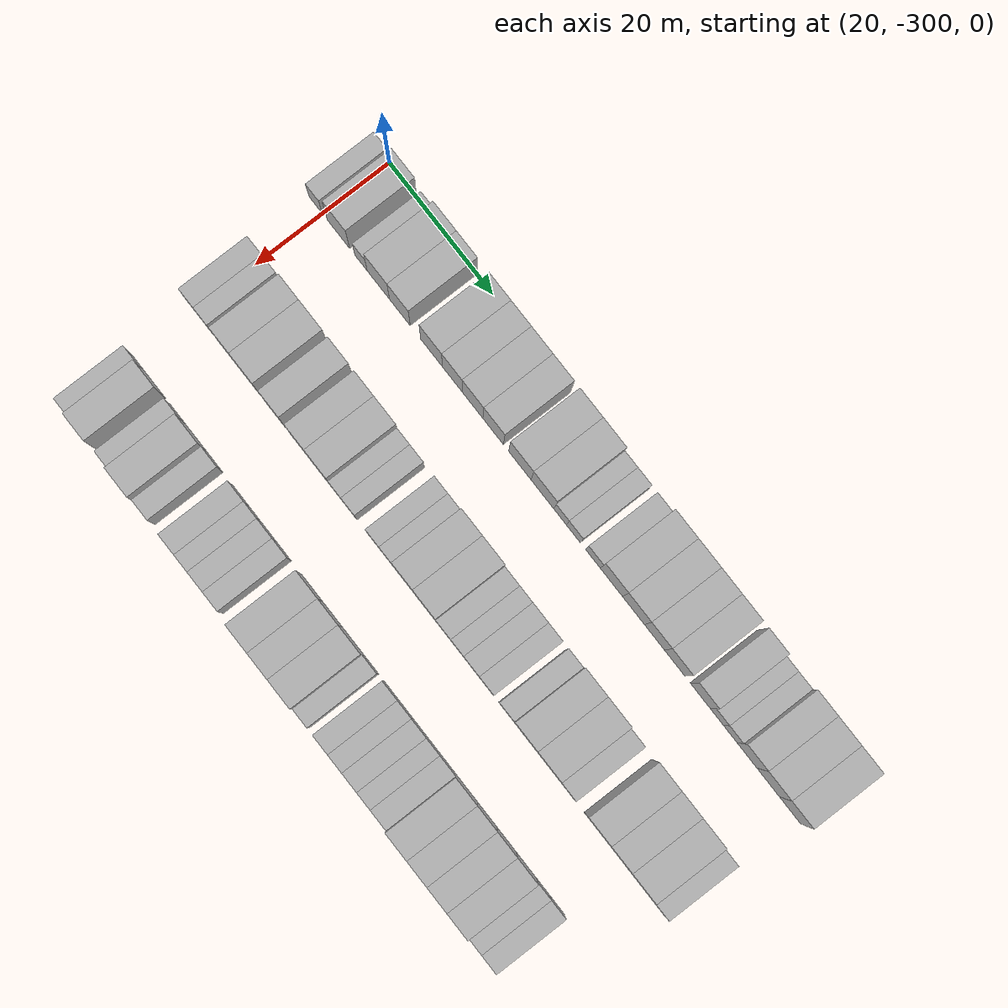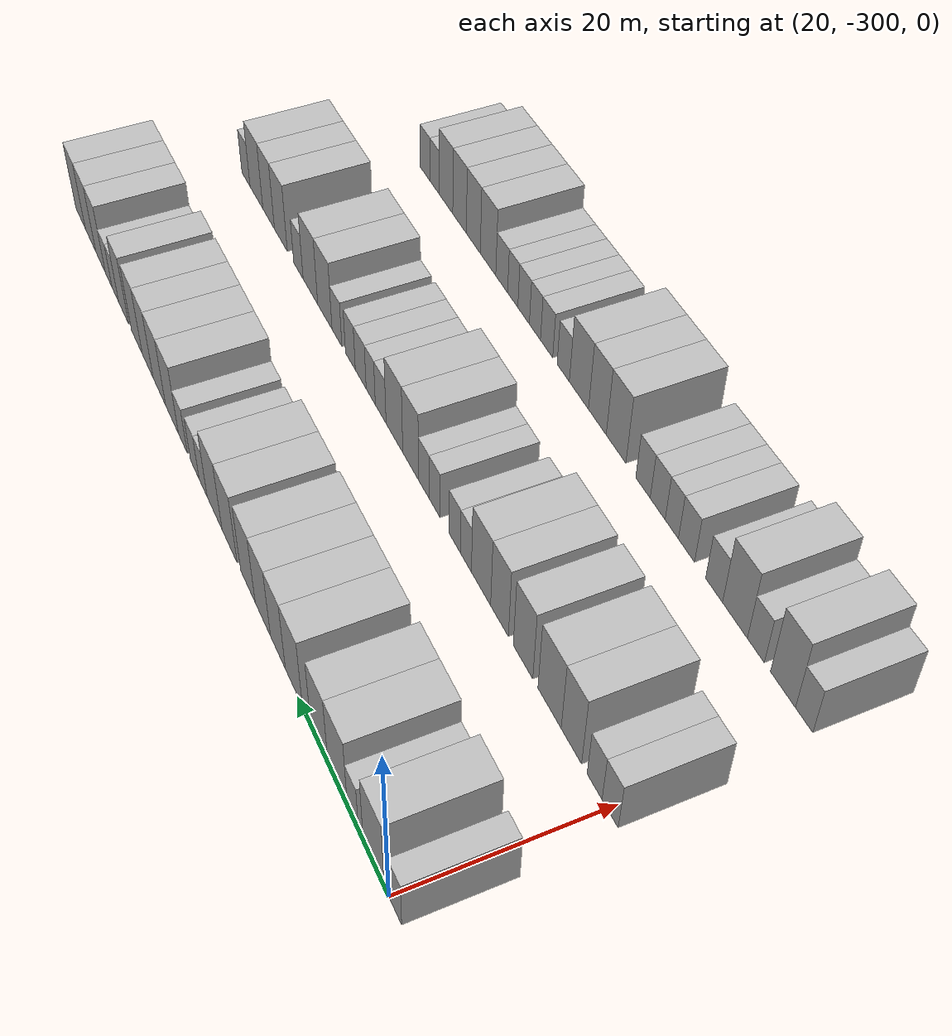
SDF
<sdf version="1.6">
 <world name="default">
  <model name="building_13">
   <static>1</static>
   <pose>25.0000 -301.3277 0 0.000000 0.000000 0.000000</pose>
   <link name="link">
    <pose>0 0 3.00 0 0 0</pose>
    <collision name="collision"><geometry><box><size>10.0000 2.5180 6.0000</size></box></geometry></collision>
    <visual name="visual">
     <cast_shadows>0</cast_shadows>
     <geometry><box><size>10.0000 2.5180 6.0000</size></box></geometry>
     <material>
      <script>
       <uri>model://HANNAS_wall/materials/scripts</uri>
       <uri>model://HANNAS_wall/materials/textures</uri>
       <name>vrc/HANNAS_wall</name>
      </script>
     </material>
    </visual>
   </link>
  </model>
  <model name="building_14">
   <static>1</static>
   <pose>25.0000 -296.8994 0 0.000000 0.000000 0.000000</pose>
   <link name="link">
    <pose>0 0 4.50 0 0 0</pose>
    <collision name="collision"><geometry><box><size>10.0000 4.3386 9.0000</size></box></geometry></collision>
    <visual name="visual">
     <cast_shadows>0</cast_shadows>
     <geometry><box><size>10.0000 4.3386 9.0000</size></box></geometry>
     <material>
      <script>
       <uri>model://HANNAS_wall/materials/scripts</uri>
       <uri>model://HANNAS_wall/materials/textures</uri>
       <name>vrc/HANNAS_wall</name>
      </script>
     </material>
    </visual>
   </link>
  </model>
  <model name="building_15">
   <static>1</static>
   <pose>25.0000 -292.5284 0 0.000000 0.000000 0.000000</pose>
   <link name="link">
    <pose>0 0 3.00 0 0 0</pose>
    <collision name="collision"><geometry><box><size>10.0000 2.4034 6.0000</size></box></geometry></collision>
    <visual name="visual">
     <cast_shadows>0</cast_shadows>
     <geometry><box><size>10.0000 2.4034 6.0000</size></box></geometry>
     <material>
      <script>
       <uri>model://HANNAS_wall/materials/scripts</uri>
       <uri>model://HANNAS_wall/materials/textures</uri>
       <name>vrc/HANNAS_wall</name>
      </script>
     </material>
    </visual>
   </link>
  </model>
  <model name="building_16">
   <static>1</static>
   <pose>25.0000 -289.1631 0 0.000000 0.000000 0.000000</pose>
   <link name="link">
    <pose>0 0 4.50 0 0 0</pose>
    <collision name="collision"><geometry><box><size>10.0000 4.3271 9.0000</size></box></geometry></collision>
    <visual name="visual">
     <cast_shadows>0</cast_shadows>
     <geometry><box><size>10.0000 4.3271 9.0000</size></box></geometry>
     <material>
      <script>
       <uri>model://HANNAS_wall/materials/scripts</uri>
       <uri>model://HANNAS_wall/materials/textures</uri>
       <name>vrc/HANNAS_wall</name>
      </script>
     </material>
    </visual>
   </link>
  </model>
  <model name="building_17">
   <static>1</static>
   <pose>25.0000 -285.0205 0 0.000000 0.000000 0.000000</pose>
   <link name="link">
    <pose>0 0 4.50 0 0 0</pose>
    <collision name="collision"><geometry><box><size>10.0000 3.9582 9.0000</size></box></geometry></collision>
    <visual name="visual">
     <cast_shadows>0</cast_shadows>
     <geometry><box><size>10.0000 3.9582 9.0000</size></box></geometry>
     <material>
      <script>
       <uri>model://HANNAS_wall/materials/scripts</uri>
       <uri>model://HANNAS_wall/materials/textures</uri>
       <name>vrc/HANNAS_wall</name>
      </script>
     </material>
    </visual>
   </link>
  </model>
  <model name="building_18">
   <static>1</static>
   <pose>25.0000 -278.9540 0 0.000000 0.000000 0.000000</pose>
   <link name="link">
    <pose>0 0 4.50 0 0 0</pose>
    <collision name="collision"><geometry><box><size>10.0000 4.1747 9.0000</size></box></geometry></collision>
    <visual name="visual">
     <cast_shadows>0</cast_shadows>
     <geometry><box><size>10.0000 4.1747 9.0000</size></box></geometry>
     <material>
      <script>
       <uri>model://HANNAS_wall/materials/scripts</uri>
       <uri>model://HANNAS_wall/materials/textures</uri>
       <name>vrc/HANNAS_wall</name>
      </script>
     </material>
    </visual>
   </link>
  </model>
  <model name="building_19">
   <static>1</static>
   <pose>25.0000 -274.9797 0 0.000000 0.000000 0.000000</pose>
   <link name="link">
    <pose>0 0 4.50 0 0 0</pose>
    <collision name="collision"><geometry><box><size>10.0000 3.7740 9.0000</size></box></geometry></collision>
    <visual name="visual">
     <cast_shadows>0</cast_shadows>
     <geometry><box><size>10.0000 3.7740 9.0000</size></box></geometry>
     <material>
      <script>
       <uri>model://HANNAS_wall/materials/scripts</uri>
       <uri>model://HANNAS_wall/materials/textures</uri>
       <name>vrc/HANNAS_wall</name>
      </script>
     </material>
    </visual>
   </link>
  </model>
  <model name="building_20">
   <static>1</static>
   <pose>25.0000 -271.0950 0 0.000000 0.000000 0.000000</pose>
   <link name="link">
    <pose>0 0 4.50 0 0 0</pose>
    <collision name="collision"><geometry><box><size>10.0000 3.9955 9.0000</size></box></geometry></collision>
    <visual name="visual">
     <cast_shadows>0</cast_shadows>
     <geometry><box><size>10.0000 3.9955 9.0000</size></box></geometry>
     <material>
      <script>
       <uri>model://HANNAS_wall/materials/scripts</uri>
       <uri>model://HANNAS_wall/materials/textures</uri>
       <name>vrc/HANNAS_wall</name>
      </script>
     </material>
    </visual>
   </link>
  </model>
  <model name="building_21">
   <static>1</static>
   <pose>25.0000 -267.1326 0 0.000000 0.000000 0.000000</pose>
   <link name="link">
    <pose>0 0 4.50 0 0 0</pose>
    <collision name="collision"><geometry><box><size>10.0000 3.9292 9.0000</size></box></geometry></collision>
    <visual name="visual">
     <cast_shadows>0</cast_shadows>
     <geometry><box><size>10.0000 3.9292 9.0000</size></box></geometry>
     <material>
      <script>
       <uri>model://HANNAS_wall/materials/scripts</uri>
       <uri>model://HANNAS_wall/materials/textures</uri>
       <name>vrc/HANNAS_wall</name>
      </script>
     </material>
    </visual>
   </link>
  </model>
  <model name="building_22">
   <static>1</static>
   <pose>25.0000 -262.0338 0 0.000000 0.000000 0.000000</pose>
   <link name="link">
    <pose>0 0 4.50 0 0 0</pose>
    <collision name="collision"><geometry><box><size>10.0000 4.2683 9.0000</size></box></geometry></collision>
    <visual name="visual">
     <cast_shadows>0</cast_shadows>
     <geometry><box><size>10.0000 4.2683 9.0000</size></box></geometry>
     <material>
      <script>
       <uri>model://HANNAS_wall/materials/scripts</uri>
       <uri>model://HANNAS_wall/materials/textures</uri>
       <name>vrc/HANNAS_wall</name>
      </script>
     </material>
    </visual>
   </link>
  </model>
  <model name="building_23">
   <static>1</static>
   <pose>25.0000 -257.7284 0 0.000000 0.000000 0.000000</pose>
   <link name="link">
    <pose>0 0 4.50 0 0 0</pose>
    <collision name="collision"><geometry><box><size>10.0000 4.3424 9.0000</size></box></geometry></collision>
    <visual name="visual">
     <cast_shadows>0</cast_shadows>
     <geometry><box><size>10.0000 4.3424 9.0000</size></box></geometry>
     <material>
      <script>
       <uri>model://HANNAS_wall/materials/scripts</uri>
       <uri>model://HANNAS_wall/materials/textures</uri>
       <name>vrc/HANNAS_wall</name>
      </script>
     </material>
    </visual>
   </link>
  </model>
  <model name="building_24">
   <static>1</static>
   <pose>25.0000 -254.3505 0 0.000000 0.000000 0.000000</pose>
   <link name="link">
    <pose>0 0 3.00 0 0 0</pose>
    <collision name="collision"><geometry><box><size>10.0000 2.4134 6.0000</size></box></geometry></collision>
    <visual name="visual">
     <cast_shadows>0</cast_shadows>
     <geometry><box><size>10.0000 2.4134 6.0000</size></box></geometry>
     <material>
      <script>
       <uri>model://HANNAS_wall/materials/scripts</uri>
       <uri>model://HANNAS_wall/materials/textures</uri>
       <name>vrc/HANNAS_wall</name>
      </script>
     </material>
    </visual>
   </link>
  </model>
  <model name="building_25">
   <static>1</static>
   <pose>25.0000 -251.8297 0 0.000000 0.000000 0.000000</pose>
   <link name="link">
    <pose>0 0 3.00 0 0 0</pose>
    <collision name="collision"><geometry><box><size>10.0000 2.6281 6.0000</size></box></geometry></collision>
    <visual name="visual">
     <cast_shadows>0</cast_shadows>
     <geometry><box><size>10.0000 2.6281 6.0000</size></box></geometry>
     <material>
      <script>
       <uri>model://HANNAS_wall/materials/scripts</uri>
       <uri>model://HANNAS_wall/materials/textures</uri>
       <name>vrc/HANNAS_wall</name>
      </script>
     </material>
    </visual>
   </link>
  </model>
  <model name="building_26">
   <static>1</static>
   <pose>25.0000 -248.1227 0 0.000000 0.000000 0.000000</pose>
   <link name="link">
    <pose>0 0 3.00 0 0 0</pose>
    <collision name="collision"><geometry><box><size>10.0000 2.7859 6.0000</size></box></geometry></collision>
    <visual name="visual">
     <cast_shadows>0</cast_shadows>
     <geometry><box><size>10.0000 2.7859 6.0000</size></box></geometry>
     <material>
      <script>
       <uri>model://HANNAS_wall/materials/scripts</uri>
       <uri>model://HANNAS_wall/materials/textures</uri>
       <name>vrc/HANNAS_wall</name>
      </script>
     </material>
    </visual>
   </link>
  </model>
  <model name="building_27">
   <static>1</static>
   <pose>25.0000 -244.6380 0 0.000000 0.000000 0.000000</pose>
   <link name="link">
    <pose>0 0 4.50 0 0 0</pose>
    <collision name="collision"><geometry><box><size>10.0000 4.1835 9.0000</size></box></geometry></collision>
    <visual name="visual">
     <cast_shadows>0</cast_shadows>
     <geometry><box><size>10.0000 4.1835 9.0000</size></box></geometry>
     <material>
      <script>
       <uri>model://HANNAS_wall/materials/scripts</uri>
       <uri>model://HANNAS_wall/materials/textures</uri>
       <name>vrc/HANNAS_wall</name>
      </script>
     </material>
    </visual>
   </link>
  </model>
  <model name="building_28">
   <static>1</static>
   <pose>25.0000 -240.4660 0 0.000000 0.000000 0.000000</pose>
   <link name="link">
    <pose>0 0 4.50 0 0 0</pose>
    <collision name="collision"><geometry><box><size>10.0000 4.1604 9.0000</size></box></geometry></collision>
    <visual name="visual">
     <cast_shadows>0</cast_shadows>
     <geometry><box><size>10.0000 4.1604 9.0000</size></box></geometry>
     <material>
      <script>
       <uri>model://HANNAS_wall/materials/scripts</uri>
       <uri>model://HANNAS_wall/materials/textures</uri>
       <name>vrc/HANNAS_wall</name>
      </script>
     </material>
    </visual>
   </link>
  </model>
  <model name="building_29">
   <static>1</static>
   <pose>25.0000 -236.5070 0 0.000000 0.000000 0.000000</pose>
   <link name="link">
    <pose>0 0 4.50 0 0 0</pose>
    <collision name="collision"><geometry><box><size>10.0000 3.7574 9.0000</size></box></geometry></collision>
    <visual name="visual">
     <cast_shadows>0</cast_shadows>
     <geometry><box><size>10.0000 3.7574 9.0000</size></box></geometry>
     <material>
      <script>
       <uri>model://HANNAS_wall/materials/scripts</uri>
       <uri>model://HANNAS_wall/materials/textures</uri>
       <name>vrc/HANNAS_wall</name>
      </script>
     </material>
    </visual>
   </link>
  </model>
  <model name="building_30">
   <static>1</static>
   <pose>25.0000 -232.7112 0 0.000000 0.000000 0.000000</pose>
   <link name="link">
    <pose>0 0 4.50 0 0 0</pose>
    <collision name="collision"><geometry><box><size>10.0000 3.8343 9.0000</size></box></geometry></collision>
    <visual name="visual">
     <cast_shadows>0</cast_shadows>
     <geometry><box><size>10.0000 3.8343 9.0000</size></box></geometry>
     <material>
      <script>
       <uri>model://HANNAS_wall/materials/scripts</uri>
       <uri>model://HANNAS_wall/materials/textures</uri>
       <name>vrc/HANNAS_wall</name>
      </script>
     </material>
    </visual>
   </link>
  </model>
  <model name="building_31">
   <static>1</static>
   <pose>25.0000 -227.9371 0 0.000000 0.000000 0.000000</pose>
   <link name="link">
    <pose>0 0 4.50 0 0 0</pose>
    <collision name="collision"><geometry><box><size>10.0000 3.7139 9.0000</size></box></geometry></collision>
    <visual name="visual">
     <cast_shadows>0</cast_shadows>
     <geometry><box><size>10.0000 3.7139 9.0000</size></box></geometry>
     <material>
      <script>
       <uri>model://HANNAS_wall/materials/scripts</uri>
       <uri>model://HANNAS_wall/materials/textures</uri>
       <name>vrc/HANNAS_wall</name>
      </script>
     </material>
    </visual>
   </link>
  </model>
  <model name="building_32">
   <static>1</static>
   <pose>25.0000 -224.8597 0 0.000000 0.000000 0.000000</pose>
   <link name="link">
    <pose>0 0 3.00 0 0 0</pose>
    <collision name="collision"><geometry><box><size>10.0000 2.4409 6.0000</size></box></geometry></collision>
    <visual name="visual">
     <cast_shadows>0</cast_shadows>
     <geometry><box><size>10.0000 2.4409 6.0000</size></box></geometry>
     <material>
      <script>
       <uri>model://HANNAS_wall/materials/scripts</uri>
       <uri>model://HANNAS_wall/materials/textures</uri>
       <name>vrc/HANNAS_wall</name>
      </script>
     </material>
    </visual>
   </link>
  </model>
  <model name="building_33">
   <static>1</static>
   <pose>25.0000 -222.3539 0 0.000000 0.000000 0.000000</pose>
   <link name="link">
    <pose>0 0 3.00 0 0 0</pose>
    <collision name="collision"><geometry><box><size>10.0000 2.5705 6.0000</size></box></geometry></collision>
    <visual name="visual">
     <cast_shadows>0</cast_shadows>
     <geometry><box><size>10.0000 2.5705 6.0000</size></box></geometry>
     <material>
      <script>
       <uri>model://HANNAS_wall/materials/scripts</uri>
       <uri>model://HANNAS_wall/materials/textures</uri>
       <name>vrc/HANNAS_wall</name>
      </script>
     </material>
    </visual>
   </link>
  </model>
  <model name="building_34">
   <static>1</static>
   <pose>25.0000 -219.1859 0 0.000000 0.000000 0.000000</pose>
   <link name="link">
    <pose>0 0 4.50 0 0 0</pose>
    <collision name="collision"><geometry><box><size>10.0000 3.7655 9.0000</size></box></geometry></collision>
    <visual name="visual">
     <cast_shadows>0</cast_shadows>
     <geometry><box><size>10.0000 3.7655 9.0000</size></box></geometry>
     <material>
      <script>
       <uri>model://HANNAS_wall/materials/scripts</uri>
       <uri>model://HANNAS_wall/materials/textures</uri>
       <name>vrc/HANNAS_wall</name>
      </script>
     </material>
    </visual>
   </link>
  </model>
  <model name="building_35">
   <static>1</static>
   <pose>25.0000 -215.2183 0 0.000000 0.000000 0.000000</pose>
   <link name="link">
    <pose>0 0 4.50 0 0 0</pose>
    <collision name="collision"><geometry><box><size>10.0000 4.1696 9.0000</size></box></geometry></collision>
    <visual name="visual">
     <cast_shadows>0</cast_shadows>
     <geometry><box><size>10.0000 4.1696 9.0000</size></box></geometry>
     <material>
      <script>
       <uri>model://HANNAS_wall/materials/scripts</uri>
       <uri>model://HANNAS_wall/materials/textures</uri>
       <name>vrc/HANNAS_wall</name>
      </script>
     </material>
    </visual>
   </link>
  </model>
  <model name="building_36">
   <static>1</static>
   <pose>25.0000 -211.1548 0 0.000000 0.000000 0.000000</pose>
   <link name="link">
    <pose>0 0 4.50 0 0 0</pose>
    <collision name="collision"><geometry><box><size>10.0000 3.9575 9.0000</size></box></geometry></collision>
    <visual name="visual">
     <cast_shadows>0</cast_shadows>
     <geometry><box><size>10.0000 3.9575 9.0000</size></box></geometry>
     <material>
      <script>
       <uri>model://HANNAS_wall/materials/scripts</uri>
       <uri>model://HANNAS_wall/materials/textures</uri>
       <name>vrc/HANNAS_wall</name>
      </script>
     </material>
    </visual>
   </link>
  </model>
  <model name="building_180">
   <static>1</static>
   <pose>44.0000 -300.4800 0 0.000000 0.000000 0.000000</pose>
   <link name="link">
    <pose>0 0 3.00 0 0 0</pose>
    <collision name="collision"><geometry><box><size>10.0000 2.7816 6.0000</size></box></geometry></collision>
    <visual name="visual">
     <cast_shadows>0</cast_shadows>
     <geometry><box><size>10.0000 2.7816 6.0000</size></box></geometry>
     <material>
      <script>
       <uri>model://HANNAS_wall/materials/scripts</uri>
       <uri>model://HANNAS_wall/materials/textures</uri>
       <name>vrc/HANNAS_wall</name>
      </script>
     </material>
    </visual>
   </link>
  </model>
  <model name="building_181">
   <static>1</static>
   <pose>44.0000 -297.7820 0 0.000000 0.000000 0.000000</pose>
   <link name="link">
    <pose>0 0 3.00 0 0 0</pose>
    <collision name="collision"><geometry><box><size>10.0000 2.6146 6.0000</size></box></geometry></collision>
    <visual name="visual">
     <cast_shadows>0</cast_shadows>
     <geometry><box><size>10.0000 2.6146 6.0000</size></box></geometry>
     <material>
      <script>
       <uri>model://HANNAS_wall/materials/scripts</uri>
       <uri>model://HANNAS_wall/materials/textures</uri>
       <name>vrc/HANNAS_wall</name>
      </script>
     </material>
    </visual>
   </link>
  </model>
  <model name="building_182">
   <static>1</static>
   <pose>44.0000 -293.6066 0 0.000000 0.000000 0.000000</pose>
   <link name="link">
    <pose>0 0 4.50 0 0 0</pose>
    <collision name="collision"><geometry><box><size>10.0000 3.7362 9.0000</size></box></geometry></collision>
    <visual name="visual">
     <cast_shadows>0</cast_shadows>
     <geometry><box><size>10.0000 3.7362 9.0000</size></box></geometry>
     <material>
      <script>
       <uri>model://HANNAS_wall/materials/scripts</uri>
       <uri>model://HANNAS_wall/materials/textures</uri>
       <name>vrc/HANNAS_wall</name>
      </script>
     </material>
    </visual>
   </link>
  </model>
  <model name="building_183">
   <static>1</static>
   <pose>44.0000 -289.5294 0 0.000000 0.000000 0.000000</pose>
   <link name="link">
    <pose>0 0 4.50 0 0 0</pose>
    <collision name="collision"><geometry><box><size>10.0000 4.4182 9.0000</size></box></geometry></collision>
    <visual name="visual">
     <cast_shadows>0</cast_shadows>
     <geometry><box><size>10.0000 4.4182 9.0000</size></box></geometry>
     <material>
      <script>
       <uri>model://HANNAS_wall/materials/scripts</uri>
       <uri>model://HANNAS_wall/materials/textures</uri>
       <name>vrc/HANNAS_wall</name>
      </script>
     </material>
    </visual>
   </link>
  </model>
  <model name="building_184">
   <static>1</static>
   <pose>44.0000 -284.3875 0 0.000000 0.000000 0.000000</pose>
   <link name="link">
    <pose>0 0 4.50 0 0 0</pose>
    <collision name="collision"><geometry><box><size>10.0000 3.8655 9.0000</size></box></geometry></collision>
    <visual name="visual">
     <cast_shadows>0</cast_shadows>
     <geometry><box><size>10.0000 3.8655 9.0000</size></box></geometry>
     <material>
      <script>
       <uri>model://HANNAS_wall/materials/scripts</uri>
       <uri>model://HANNAS_wall/materials/textures</uri>
       <name>vrc/HANNAS_wall</name>
      </script>
     </material>
    </visual>
   </link>
  </model>
  <model name="building_185">
   <static>1</static>
   <pose>44.0000 -279.6156 0 0.000000 0.000000 0.000000</pose>
   <link name="link">
    <pose>0 0 4.50 0 0 0</pose>
    <collision name="collision"><geometry><box><size>10.0000 3.6783 9.0000</size></box></geometry></collision>
    <visual name="visual">
     <cast_shadows>0</cast_shadows>
     <geometry><box><size>10.0000 3.6783 9.0000</size></box></geometry>
     <material>
      <script>
       <uri>model://HANNAS_wall/materials/scripts</uri>
       <uri>model://HANNAS_wall/materials/textures</uri>
       <name>vrc/HANNAS_wall</name>
      </script>
     </material>
    </visual>
   </link>
  </model>
  <model name="building_186">
   <static>1</static>
   <pose>44.0000 -275.7178 0 0.000000 0.000000 0.000000</pose>
   <link name="link">
    <pose>0 0 4.50 0 0 0</pose>
    <collision name="collision"><geometry><box><size>10.0000 4.1174 9.0000</size></box></geometry></collision>
    <visual name="visual">
     <cast_shadows>0</cast_shadows>
     <geometry><box><size>10.0000 4.1174 9.0000</size></box></geometry>
     <material>
      <script>
       <uri>model://HANNAS_wall/materials/scripts</uri>
       <uri>model://HANNAS_wall/materials/textures</uri>
       <name>vrc/HANNAS_wall</name>
      </script>
     </material>
    </visual>
   </link>
  </model>
  <model name="building_187">
   <static>1</static>
   <pose>44.0000 -272.4531 0 0.000000 0.000000 0.000000</pose>
   <link name="link">
    <pose>0 0 3.00 0 0 0</pose>
    <collision name="collision"><geometry><box><size>10.0000 2.4120 6.0000</size></box></geometry></collision>
    <visual name="visual">
     <cast_shadows>0</cast_shadows>
     <geometry><box><size>10.0000 2.4120 6.0000</size></box></geometry>
     <material>
      <script>
       <uri>model://HANNAS_wall/materials/scripts</uri>
       <uri>model://HANNAS_wall/materials/textures</uri>
       <name>vrc/HANNAS_wall</name>
      </script>
     </material>
    </visual>
   </link>
  </model>
  <model name="building_188">
   <static>1</static>
   <pose>44.0000 -269.9585 0 0.000000 0.000000 0.000000</pose>
   <link name="link">
    <pose>0 0 3.00 0 0 0</pose>
    <collision name="collision"><geometry><box><size>10.0000 2.5773 6.0000</size></box></geometry></collision>
    <visual name="visual">
     <cast_shadows>0</cast_shadows>
     <geometry><box><size>10.0000 2.5773 6.0000</size></box></geometry>
     <material>
      <script>
       <uri>model://HANNAS_wall/materials/scripts</uri>
       <uri>model://HANNAS_wall/materials/textures</uri>
       <name>vrc/HANNAS_wall</name>
      </script>
     </material>
    </visual>
   </link>
  </model>
  <model name="building_189">
   <static>1</static>
   <pose>44.0000 -265.3966 0 0.000000 0.000000 0.000000</pose>
   <link name="link">
    <pose>0 0 3.00 0 0 0</pose>
    <collision name="collision"><geometry><box><size>10.0000 2.5464 6.0000</size></box></geometry></collision>
    <visual name="visual">
     <cast_shadows>0</cast_shadows>
     <geometry><box><size>10.0000 2.5464 6.0000</size></box></geometry>
     <material>
      <script>
       <uri>model://HANNAS_wall/materials/scripts</uri>
       <uri>model://HANNAS_wall/materials/textures</uri>
       <name>vrc/HANNAS_wall</name>
      </script>
     </material>
    </visual>
   </link>
  </model>
  <model name="building_190">
   <static>1</static>
   <pose>44.0000 -262.8817 0 0.000000 0.000000 0.000000</pose>
   <link name="link">
    <pose>0 0 3.00 0 0 0</pose>
    <collision name="collision"><geometry><box><size>10.0000 2.4835 6.0000</size></box></geometry></collision>
    <visual name="visual">
     <cast_shadows>0</cast_shadows>
     <geometry><box><size>10.0000 2.4835 6.0000</size></box></geometry>
     <material>
      <script>
       <uri>model://HANNAS_wall/materials/scripts</uri>
       <uri>model://HANNAS_wall/materials/textures</uri>
       <name>vrc/HANNAS_wall</name>
      </script>
     </material>
    </visual>
   </link>
  </model>
  <model name="building_191">
   <static>1</static>
   <pose>44.0000 -259.6880 0 0.000000 0.000000 0.000000</pose>
   <link name="link">
    <pose>0 0 4.50 0 0 0</pose>
    <collision name="collision"><geometry><box><size>10.0000 3.9039 9.0000</size></box></geometry></collision>
    <visual name="visual">
     <cast_shadows>0</cast_shadows>
     <geometry><box><size>10.0000 3.9039 9.0000</size></box></geometry>
     <material>
      <script>
       <uri>model://HANNAS_wall/materials/scripts</uri>
       <uri>model://HANNAS_wall/materials/textures</uri>
       <name>vrc/HANNAS_wall</name>
      </script>
     </material>
    </visual>
   </link>
  </model>
  <model name="building_192">
   <static>1</static>
   <pose>44.0000 -255.6372 0 0.000000 0.000000 0.000000</pose>
   <link name="link">
    <pose>0 0 4.50 0 0 0</pose>
    <collision name="collision"><geometry><box><size>10.0000 4.1978 9.0000</size></box></geometry></collision>
    <visual name="visual">
     <cast_shadows>0</cast_shadows>
     <geometry><box><size>10.0000 4.1978 9.0000</size></box></geometry>
     <material>
      <script>
       <uri>model://HANNAS_wall/materials/scripts</uri>
       <uri>model://HANNAS_wall/materials/textures</uri>
       <name>vrc/HANNAS_wall</name>
      </script>
     </material>
    </visual>
   </link>
  </model>
  <model name="building_193">
   <static>1</static>
   <pose>44.0000 -252.1436 0 0.000000 0.000000 0.000000</pose>
   <link name="link">
    <pose>0 0 3.00 0 0 0</pose>
    <collision name="collision"><geometry><box><size>10.0000 2.7894 6.0000</size></box></geometry></collision>
    <visual name="visual">
     <cast_shadows>0</cast_shadows>
     <geometry><box><size>10.0000 2.7894 6.0000</size></box></geometry>
     <material>
      <script>
       <uri>model://HANNAS_wall/materials/scripts</uri>
       <uri>model://HANNAS_wall/materials/textures</uri>
       <name>vrc/HANNAS_wall</name>
      </script>
     </material>
    </visual>
   </link>
  </model>
  <model name="building_194">
   <static>1</static>
   <pose>44.0000 -249.5460 0 0.000000 0.000000 0.000000</pose>
   <link name="link">
    <pose>0 0 3.00 0 0 0</pose>
    <collision name="collision"><geometry><box><size>10.0000 2.4059 6.0000</size></box></geometry></collision>
    <visual name="visual">
     <cast_shadows>0</cast_shadows>
     <geometry><box><size>10.0000 2.4059 6.0000</size></box></geometry>
     <material>
      <script>
       <uri>model://HANNAS_wall/materials/scripts</uri>
       <uri>model://HANNAS_wall/materials/textures</uri>
       <name>vrc/HANNAS_wall</name>
      </script>
     </material>
    </visual>
   </link>
  </model>
  <model name="building_195">
   <static>1</static>
   <pose>44.0000 -246.8847 0 0.000000 0.000000 0.000000</pose>
   <link name="link">
    <pose>0 0 3.00 0 0 0</pose>
    <collision name="collision"><geometry><box><size>10.0000 2.9166 6.0000</size></box></geometry></collision>
    <visual name="visual">
     <cast_shadows>0</cast_shadows>
     <geometry><box><size>10.0000 2.9166 6.0000</size></box></geometry>
     <material>
      <script>
       <uri>model://HANNAS_wall/materials/scripts</uri>
       <uri>model://HANNAS_wall/materials/textures</uri>
       <name>vrc/HANNAS_wall</name>
      </script>
     </material>
    </visual>
   </link>
  </model>
  <model name="building_196">
   <static>1</static>
   <pose>44.0000 -244.0745 0 0.000000 0.000000 0.000000</pose>
   <link name="link">
    <pose>0 0 3.00 0 0 0</pose>
    <collision name="collision"><geometry><box><size>10.0000 2.7039 6.0000</size></box></geometry></collision>
    <visual name="visual">
     <cast_shadows>0</cast_shadows>
     <geometry><box><size>10.0000 2.7039 6.0000</size></box></geometry>
     <material>
      <script>
       <uri>model://HANNAS_wall/materials/scripts</uri>
       <uri>model://HANNAS_wall/materials/textures</uri>
       <name>vrc/HANNAS_wall</name>
      </script>
     </material>
    </visual>
   </link>
  </model>
  <model name="building_197">
   <static>1</static>
   <pose>44.0000 -240.3327 0 0.000000 0.000000 0.000000</pose>
   <link name="link">
    <pose>0 0 3.00 0 0 0</pose>
    <collision name="collision"><geometry><box><size>10.0000 2.7797 6.0000</size></box></geometry></collision>
    <visual name="visual">
     <cast_shadows>0</cast_shadows>
     <geometry><box><size>10.0000 2.7797 6.0000</size></box></geometry>
     <material>
      <script>
       <uri>model://HANNAS_wall/materials/scripts</uri>
       <uri>model://HANNAS_wall/materials/textures</uri>
       <name>vrc/HANNAS_wall</name>
      </script>
     </material>
    </visual>
   </link>
  </model>
  <model name="building_198">
   <static>1</static>
   <pose>44.0000 -236.8700 0 0.000000 0.000000 0.000000</pose>
   <link name="link">
    <pose>0 0 4.50 0 0 0</pose>
    <collision name="collision"><geometry><box><size>10.0000 4.1458 9.0000</size></box></geometry></collision>
    <visual name="visual">
     <cast_shadows>0</cast_shadows>
     <geometry><box><size>10.0000 4.1458 9.0000</size></box></geometry>
     <material>
      <script>
       <uri>model://HANNAS_wall/materials/scripts</uri>
       <uri>model://HANNAS_wall/materials/textures</uri>
       <name>vrc/HANNAS_wall</name>
      </script>
     </material>
    </visual>
   </link>
  </model>
  <model name="building_199">
   <static>1</static>
   <pose>44.0000 -232.6188 0 0.000000 0.000000 0.000000</pose>
   <link name="link">
    <pose>0 0 4.50 0 0 0</pose>
    <collision name="collision"><geometry><box><size>10.0000 4.3565 9.0000</size></box></geometry></collision>
    <visual name="visual">
     <cast_shadows>0</cast_shadows>
     <geometry><box><size>10.0000 4.3565 9.0000</size></box></geometry>
     <material>
      <script>
       <uri>model://HANNAS_wall/materials/scripts</uri>
       <uri>model://HANNAS_wall/materials/textures</uri>
       <name>vrc/HANNAS_wall</name>
      </script>
     </material>
    </visual>
   </link>
  </model>
  <model name="building_200">
   <static>1</static>
   <pose>44.0000 -229.0098 0 0.000000 0.000000 0.000000</pose>
   <link name="link">
    <pose>0 0 3.00 0 0 0</pose>
    <collision name="collision"><geometry><box><size>10.0000 2.8615 6.0000</size></box></geometry></collision>
    <visual name="visual">
     <cast_shadows>0</cast_shadows>
     <geometry><box><size>10.0000 2.8615 6.0000</size></box></geometry>
     <material>
      <script>
       <uri>model://HANNAS_wall/materials/scripts</uri>
       <uri>model://HANNAS_wall/materials/textures</uri>
       <name>vrc/HANNAS_wall</name>
      </script>
     </material>
    </visual>
   </link>
  </model>
  <model name="building_201">
   <static>1</static>
   <pose>44.0000 -223.5314 0 0.000000 0.000000 0.000000</pose>
   <link name="link">
    <pose>0 0 4.50 0 0 0</pose>
    <collision name="collision"><geometry><box><size>10.0000 4.0953 9.0000</size></box></geometry></collision>
    <visual name="visual">
     <cast_shadows>0</cast_shadows>
     <geometry><box><size>10.0000 4.0953 9.0000</size></box></geometry>
     <material>
      <script>
       <uri>model://HANNAS_wall/materials/scripts</uri>
       <uri>model://HANNAS_wall/materials/textures</uri>
       <name>vrc/HANNAS_wall</name>
      </script>
     </material>
    </visual>
   </link>
  </model>
  <model name="building_202">
   <static>1</static>
   <pose>44.0000 -219.5943 0 0.000000 0.000000 0.000000</pose>
   <link name="link">
    <pose>0 0 4.50 0 0 0</pose>
    <collision name="collision"><geometry><box><size>10.0000 3.7789 9.0000</size></box></geometry></collision>
    <visual name="visual">
     <cast_shadows>0</cast_shadows>
     <geometry><box><size>10.0000 3.7789 9.0000</size></box></geometry>
     <material>
      <script>
       <uri>model://HANNAS_wall/materials/scripts</uri>
       <uri>model://HANNAS_wall/materials/textures</uri>
       <name>vrc/HANNAS_wall</name>
      </script>
     </material>
    </visual>
   </link>
  </model>
  <model name="building_203">
   <static>1</static>
   <pose>44.0000 -215.5528 0 0.000000 0.000000 0.000000</pose>
   <link name="link">
    <pose>0 0 4.50 0 0 0</pose>
    <collision name="collision"><geometry><box><size>10.0000 4.3041 9.0000</size></box></geometry></collision>
    <visual name="visual">
     <cast_shadows>0</cast_shadows>
     <geometry><box><size>10.0000 4.3041 9.0000</size></box></geometry>
     <material>
      <script>
       <uri>model://HANNAS_wall/materials/scripts</uri>
       <uri>model://HANNAS_wall/materials/textures</uri>
       <name>vrc/HANNAS_wall</name>
      </script>
     </material>
    </visual>
   </link>
  </model>
  <model name="building_204">
   <static>1</static>
   <pose>44.0000 -212.0073 0 0.000000 0.000000 0.000000</pose>
   <link name="link">
    <pose>0 0 3.00 0 0 0</pose>
    <collision name="collision"><geometry><box><size>10.0000 2.7870 6.0000</size></box></geometry></collision>
    <visual name="visual">
     <cast_shadows>0</cast_shadows>
     <geometry><box><size>10.0000 2.7870 6.0000</size></box></geometry>
     <material>
      <script>
       <uri>model://HANNAS_wall/materials/scripts</uri>
       <uri>model://HANNAS_wall/materials/textures</uri>
       <name>vrc/HANNAS_wall</name>
      </script>
     </material>
    </visual>
   </link>
  </model>
  <model name="building_338">
   <static>1</static>
   <pose>63.0000 -299.1795 0 0.000000 0.000000 0.000000</pose>
   <link name="link">
    <pose>0 0 3.00 0 0 0</pose>
    <collision name="collision"><geometry><box><size>10.0000 2.7005 6.0000</size></box></geometry></collision>
    <visual name="visual">
     <cast_shadows>0</cast_shadows>
     <geometry><box><size>10.0000 2.7005 6.0000</size></box></geometry>
     <material>
      <script>
       <uri>model://HANNAS_wall/materials/scripts</uri>
       <uri>model://HANNAS_wall/materials/textures</uri>
       <name>vrc/HANNAS_wall</name>
      </script>
     </material>
    </visual>
   </link>
  </model>
  <model name="building_339">
   <static>1</static>
   <pose>63.0000 -295.8278 0 0.000000 0.000000 0.000000</pose>
   <link name="link">
    <pose>0 0 4.50 0 0 0</pose>
    <collision name="collision"><geometry><box><size>10.0000 4.0028 9.0000</size></box></geometry></collision>
    <visual name="visual">
     <cast_shadows>0</cast_shadows>
     <geometry><box><size>10.0000 4.0028 9.0000</size></box></geometry>
     <material>
      <script>
       <uri>model://HANNAS_wall/materials/scripts</uri>
       <uri>model://HANNAS_wall/materials/textures</uri>
       <name>vrc/HANNAS_wall</name>
      </script>
     </material>
    </visual>
   </link>
  </model>
  <model name="building_340">
   <static>1</static>
   <pose>63.0000 -291.4168 0 0.000000 0.000000 0.000000</pose>
   <link name="link">
    <pose>0 0 3.00 0 0 0</pose>
    <collision name="collision"><geometry><box><size>10.0000 2.8192 6.0000</size></box></geometry></collision>
    <visual name="visual">
     <cast_shadows>0</cast_shadows>
     <geometry><box><size>10.0000 2.8192 6.0000</size></box></geometry>
     <material>
      <script>
       <uri>model://HANNAS_wall/materials/scripts</uri>
       <uri>model://HANNAS_wall/materials/textures</uri>
       <name>vrc/HANNAS_wall</name>
      </script>
     </material>
    </visual>
   </link>
  </model>
  <model name="building_341">
   <static>1</static>
   <pose>63.0000 -287.8745 0 0.000000 0.000000 0.000000</pose>
   <link name="link">
    <pose>0 0 4.50 0 0 0</pose>
    <collision name="collision"><geometry><box><size>10.0000 4.2655 9.0000</size></box></geometry></collision>
    <visual name="visual">
     <cast_shadows>0</cast_shadows>
     <geometry><box><size>10.0000 4.2655 9.0000</size></box></geometry>
     <material>
      <script>
       <uri>model://HANNAS_wall/materials/scripts</uri>
       <uri>model://HANNAS_wall/materials/textures</uri>
       <name>vrc/HANNAS_wall</name>
      </script>
     </material>
    </visual>
   </link>
  </model>
  <model name="building_342">
   <static>1</static>
   <pose>63.0000 -284.2489 0 0.000000 0.000000 0.000000</pose>
   <link name="link">
    <pose>0 0 3.00 0 0 0</pose>
    <collision name="collision"><geometry><box><size>10.0000 2.9856 6.0000</size></box></geometry></collision>
    <visual name="visual">
     <cast_shadows>0</cast_shadows>
     <geometry><box><size>10.0000 2.9856 6.0000</size></box></geometry>
     <material>
      <script>
       <uri>model://HANNAS_wall/materials/scripts</uri>
       <uri>model://HANNAS_wall/materials/textures</uri>
       <name>vrc/HANNAS_wall</name>
      </script>
     </material>
    </visual>
   </link>
  </model>
  <model name="building_343">
   <static>1</static>
   <pose>63.0000 -279.2612 0 0.000000 0.000000 0.000000</pose>
   <link name="link">
    <pose>0 0 3.00 0 0 0</pose>
    <collision name="collision"><geometry><box><size>10.0000 2.9898 6.0000</size></box></geometry></collision>
    <visual name="visual">
     <cast_shadows>0</cast_shadows>
     <geometry><box><size>10.0000 2.9898 6.0000</size></box></geometry>
     <material>
      <script>
       <uri>model://HANNAS_wall/materials/scripts</uri>
       <uri>model://HANNAS_wall/materials/textures</uri>
       <name>vrc/HANNAS_wall</name>
      </script>
     </material>
    </visual>
   </link>
  </model>
  <model name="building_344">
   <static>1</static>
   <pose>63.0000 -276.5204 0 0.000000 0.000000 0.000000</pose>
   <link name="link">
    <pose>0 0 3.00 0 0 0</pose>
    <collision name="collision"><geometry><box><size>10.0000 2.4917 6.0000</size></box></geometry></collision>
    <visual name="visual">
     <cast_shadows>0</cast_shadows>
     <geometry><box><size>10.0000 2.4917 6.0000</size></box></geometry>
     <material>
      <script>
       <uri>model://HANNAS_wall/materials/scripts</uri>
       <uri>model://HANNAS_wall/materials/textures</uri>
       <name>vrc/HANNAS_wall</name>
      </script>
     </material>
    </visual>
   </link>
  </model>
  <model name="building_345">
   <static>1</static>
   <pose>63.0000 -273.8358 0 0.000000 0.000000 0.000000</pose>
   <link name="link">
    <pose>0 0 3.00 0 0 0</pose>
    <collision name="collision"><geometry><box><size>10.0000 2.8775 6.0000</size></box></geometry></collision>
    <visual name="visual">
     <cast_shadows>0</cast_shadows>
     <geometry><box><size>10.0000 2.8775 6.0000</size></box></geometry>
     <material>
      <script>
       <uri>model://HANNAS_wall/materials/scripts</uri>
       <uri>model://HANNAS_wall/materials/textures</uri>
       <name>vrc/HANNAS_wall</name>
      </script>
     </material>
    </visual>
   </link>
  </model>
  <model name="building_346">
   <static>1</static>
   <pose>63.0000 -270.9823 0 0.000000 0.000000 0.000000</pose>
   <link name="link">
    <pose>0 0 3.00 0 0 0</pose>
    <collision name="collision"><geometry><box><size>10.0000 2.8295 6.0000</size></box></geometry></collision>
    <visual name="visual">
     <cast_shadows>0</cast_shadows>
     <geometry><box><size>10.0000 2.8295 6.0000</size></box></geometry>
     <material>
      <script>
       <uri>model://HANNAS_wall/materials/scripts</uri>
       <uri>model://HANNAS_wall/materials/textures</uri>
       <name>vrc/HANNAS_wall</name>
      </script>
     </material>
    </visual>
   </link>
  </model>
  <model name="building_347">
   <static>1</static>
   <pose>63.0000 -265.5472 0 0.000000 0.000000 0.000000</pose>
   <link name="link">
    <pose>0 0 4.50 0 0 0</pose>
    <collision name="collision"><geometry><box><size>10.0000 4.0407 9.0000</size></box></geometry></collision>
    <visual name="visual">
     <cast_shadows>0</cast_shadows>
     <geometry><box><size>10.0000 4.0407 9.0000</size></box></geometry>
     <material>
      <script>
       <uri>model://HANNAS_wall/materials/scripts</uri>
       <uri>model://HANNAS_wall/materials/textures</uri>
       <name>vrc/HANNAS_wall</name>
      </script>
     </material>
    </visual>
   </link>
  </model>
  <model name="building_348">
   <static>1</static>
   <pose>63.0000 -261.6456 0 0.000000 0.000000 0.000000</pose>
   <link name="link">
    <pose>0 0 4.50 0 0 0</pose>
    <collision name="collision"><geometry><box><size>10.0000 3.7625 9.0000</size></box></geometry></collision>
    <visual name="visual">
     <cast_shadows>0</cast_shadows>
     <geometry><box><size>10.0000 3.7625 9.0000</size></box></geometry>
     <material>
      <script>
       <uri>model://HANNAS_wall/materials/scripts</uri>
       <uri>model://HANNAS_wall/materials/textures</uri>
       <name>vrc/HANNAS_wall</name>
      </script>
     </material>
    </visual>
   </link>
  </model>
  <model name="building_349">
   <static>1</static>
   <pose>63.0000 -257.6735 0 0.000000 0.000000 0.000000</pose>
   <link name="link">
    <pose>0 0 4.50 0 0 0</pose>
    <collision name="collision"><geometry><box><size>10.0000 4.1817 9.0000</size></box></geometry></collision>
    <visual name="visual">
     <cast_shadows>0</cast_shadows>
     <geometry><box><size>10.0000 4.1817 9.0000</size></box></geometry>
     <material>
      <script>
       <uri>model://HANNAS_wall/materials/scripts</uri>
       <uri>model://HANNAS_wall/materials/textures</uri>
       <name>vrc/HANNAS_wall</name>
      </script>
     </material>
    </visual>
   </link>
  </model>
  <model name="building_350">
   <static>1</static>
   <pose>63.0000 -254.2113 0 0.000000 0.000000 0.000000</pose>
   <link name="link">
    <pose>0 0 3.00 0 0 0</pose>
    <collision name="collision"><geometry><box><size>10.0000 2.7426 6.0000</size></box></geometry></collision>
    <visual name="visual">
     <cast_shadows>0</cast_shadows>
     <geometry><box><size>10.0000 2.7426 6.0000</size></box></geometry>
     <material>
      <script>
       <uri>model://HANNAS_wall/materials/scripts</uri>
       <uri>model://HANNAS_wall/materials/textures</uri>
       <name>vrc/HANNAS_wall</name>
      </script>
     </material>
    </visual>
   </link>
  </model>
  <model name="building_351">
   <static>1</static>
   <pose>63.0000 -250.4266 0 0.000000 0.000000 0.000000</pose>
   <link name="link">
    <pose>0 0 3.00 0 0 0</pose>
    <collision name="collision"><geometry><box><size>10.0000 2.8269 6.0000</size></box></geometry></collision>
    <visual name="visual">
     <cast_shadows>0</cast_shadows>
     <geometry><box><size>10.0000 2.8269 6.0000</size></box></geometry>
     <material>
      <script>
       <uri>model://HANNAS_wall/materials/scripts</uri>
       <uri>model://HANNAS_wall/materials/textures</uri>
       <name>vrc/HANNAS_wall</name>
      </script>
     </material>
    </visual>
   </link>
  </model>
  <model name="building_352">
   <static>1</static>
   <pose>63.0000 -247.7076 0 0.000000 0.000000 0.000000</pose>
   <link name="link">
    <pose>0 0 3.00 0 0 0</pose>
    <collision name="collision"><geometry><box><size>10.0000 2.6109 6.0000</size></box></geometry></collision>
    <visual name="visual">
     <cast_shadows>0</cast_shadows>
     <geometry><box><size>10.0000 2.6109 6.0000</size></box></geometry>
     <material>
      <script>
       <uri>model://HANNAS_wall/materials/scripts</uri>
       <uri>model://HANNAS_wall/materials/textures</uri>
       <name>vrc/HANNAS_wall</name>
      </script>
     </material>
    </visual>
   </link>
  </model>
  <model name="building_353">
   <static>1</static>
   <pose>63.0000 -245.0195 0 0.000000 0.000000 0.000000</pose>
   <link name="link">
    <pose>0 0 3.00 0 0 0</pose>
    <collision name="collision"><geometry><box><size>10.0000 2.7654 6.0000</size></box></geometry></collision>
    <visual name="visual">
     <cast_shadows>0</cast_shadows>
     <geometry><box><size>10.0000 2.7654 6.0000</size></box></geometry>
     <material>
      <script>
       <uri>model://HANNAS_wall/materials/scripts</uri>
       <uri>model://HANNAS_wall/materials/textures</uri>
       <name>vrc/HANNAS_wall</name>
      </script>
     </material>
    </visual>
   </link>
  </model>
  <model name="building_354">
   <static>1</static>
   <pose>63.0000 -242.3859 0 0.000000 0.000000 0.000000</pose>
   <link name="link">
    <pose>0 0 3.00 0 0 0</pose>
    <collision name="collision"><geometry><box><size>10.0000 2.5019 6.0000</size></box></geometry></collision>
    <visual name="visual">
     <cast_shadows>0</cast_shadows>
     <geometry><box><size>10.0000 2.5019 6.0000</size></box></geometry>
     <material>
      <script>
       <uri>model://HANNAS_wall/materials/scripts</uri>
       <uri>model://HANNAS_wall/materials/textures</uri>
       <name>vrc/HANNAS_wall</name>
      </script>
     </material>
    </visual>
   </link>
  </model>
  <model name="building_355">
   <static>1</static>
   <pose>63.0000 -239.6598 0 0.000000 0.000000 0.000000</pose>
   <link name="link">
    <pose>0 0 3.00 0 0 0</pose>
    <collision name="collision"><geometry><box><size>10.0000 2.9502 6.0000</size></box></geometry></collision>
    <visual name="visual">
     <cast_shadows>0</cast_shadows>
     <geometry><box><size>10.0000 2.9502 6.0000</size></box></geometry>
     <material>
      <script>
       <uri>model://HANNAS_wall/materials/scripts</uri>
       <uri>model://HANNAS_wall/materials/textures</uri>
       <name>vrc/HANNAS_wall</name>
      </script>
     </material>
    </visual>
   </link>
  </model>
  <model name="building_356">
   <static>1</static>
   <pose>63.0000 -236.2063 0 0.000000 0.000000 0.000000</pose>
   <link name="link">
    <pose>0 0 4.50 0 0 0</pose>
    <collision name="collision"><geometry><box><size>10.0000 3.9568 9.0000</size></box></geometry></collision>
    <visual name="visual">
     <cast_shadows>0</cast_shadows>
     <geometry><box><size>10.0000 3.9568 9.0000</size></box></geometry>
     <material>
      <script>
       <uri>model://HANNAS_wall/materials/scripts</uri>
       <uri>model://HANNAS_wall/materials/textures</uri>
       <name>vrc/HANNAS_wall</name>
      </script>
     </material>
    </visual>
   </link>
  </model>
  <model name="building_357">
   <static>1</static>
   <pose>63.0000 -232.3947 0 0.000000 0.000000 0.000000</pose>
   <link name="link">
    <pose>0 0 4.50 0 0 0</pose>
    <collision name="collision"><geometry><box><size>10.0000 3.6664 9.0000</size></box></geometry></collision>
    <visual name="visual">
     <cast_shadows>0</cast_shadows>
     <geometry><box><size>10.0000 3.6664 9.0000</size></box></geometry>
     <material>
      <script>
       <uri>model://HANNAS_wall/materials/scripts</uri>
       <uri>model://HANNAS_wall/materials/textures</uri>
       <name>vrc/HANNAS_wall</name>
      </script>
     </material>
    </visual>
   </link>
  </model>
  <model name="building_358">
   <static>1</static>
   <pose>63.0000 -228.7438 0 0.000000 0.000000 0.000000</pose>
   <link name="link">
    <pose>0 0 4.50 0 0 0</pose>
    <collision name="collision"><geometry><box><size>10.0000 3.6354 9.0000</size></box></geometry></collision>
    <visual name="visual">
     <cast_shadows>0</cast_shadows>
     <geometry><box><size>10.0000 3.6354 9.0000</size></box></geometry>
     <material>
      <script>
       <uri>model://HANNAS_wall/materials/scripts</uri>
       <uri>model://HANNAS_wall/materials/textures</uri>
       <name>vrc/HANNAS_wall</name>
      </script>
     </material>
    </visual>
   </link>
  </model>
  <model name="building_359">
   <static>1</static>
   <pose>63.0000 -225.0316 0 0.000000 0.000000 0.000000</pose>
   <link name="link">
    <pose>0 0 4.50 0 0 0</pose>
    <collision name="collision"><geometry><box><size>10.0000 3.7890 9.0000</size></box></geometry></collision>
    <visual name="visual">
     <cast_shadows>0</cast_shadows>
     <geometry><box><size>10.0000 3.7890 9.0000</size></box></geometry>
     <material>
      <script>
       <uri>model://HANNAS_wall/materials/scripts</uri>
       <uri>model://HANNAS_wall/materials/textures</uri>
       <name>vrc/HANNAS_wall</name>
      </script>
     </material>
    </visual>
   </link>
  </model>
  <model name="building_360">
   <static>1</static>
   <pose>63.0000 -221.8704 0 0.000000 0.000000 0.000000</pose>
   <link name="link">
    <pose>0 0 3.00 0 0 0</pose>
    <collision name="collision"><geometry><box><size>10.0000 2.5334 6.0000</size></box></geometry></collision>
    <visual name="visual">
     <cast_shadows>0</cast_shadows>
     <geometry><box><size>10.0000 2.5334 6.0000</size></box></geometry>
     <material>
      <script>
       <uri>model://HANNAS_wall/materials/scripts</uri>
       <uri>model://HANNAS_wall/materials/textures</uri>
       <name>vrc/HANNAS_wall</name>
      </script>
     </material>
    </visual>
   </link>
  </model>
  <model name="building_361">
   <static>1</static>
   <pose>63.0000 -219.2396 0 0.000000 0.000000 0.000000</pose>
   <link name="link">
    <pose>0 0 3.00 0 0 0</pose>
    <collision name="collision"><geometry><box><size>10.0000 2.7282 6.0000</size></box></geometry></collision>
    <visual name="visual">
     <cast_shadows>0</cast_shadows>
     <geometry><box><size>10.0000 2.7282 6.0000</size></box></geometry>
     <material>
      <script>
       <uri>model://HANNAS_wall/materials/scripts</uri>
       <uri>model://HANNAS_wall/materials/textures</uri>
       <name>vrc/HANNAS_wall</name>
      </script>
     </material>
    </visual>
   </link>
  </model>
 </world>
</sdf>
